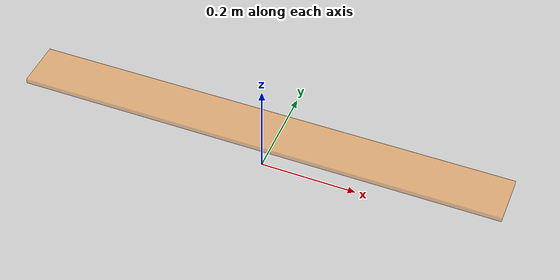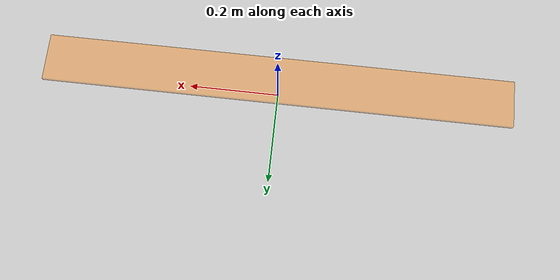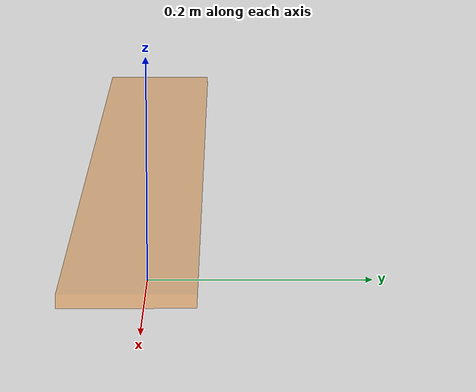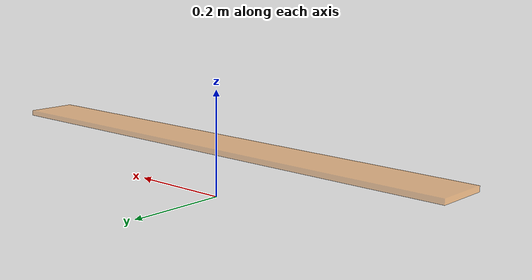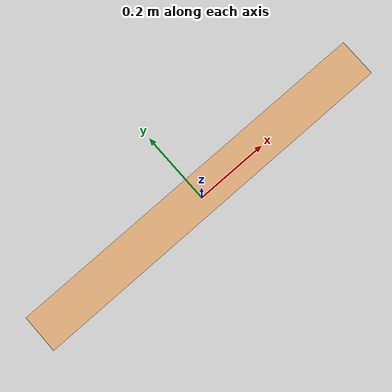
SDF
<?xml version="1.0" ?>
<sdf version="1.8">
  <model name="line_boundary_visible">

    <static>true</static>

    <link name="white_line_boundary">
      <collision name="line_collision">
        <pose>0 0 0.1 0 0 0</pose>
        <geometry>
          <box><size>1 0.1 0.01</size></box>
        </geometry>
      </collision>

      <visual name="line_visual">
        <pose>0 0 0.1 0 0 0</pose>
        <geometry>
          <box><size>1 0.1 0.01</size></box>
        </geometry>
        <material>
          <ambient>1.0 0.5 0.0 0.4</ambient>
          <diffuse>1.0 0.5 0.0 0.4</diffuse>
        </material>
      </visual>
    </link>

  </model>
</sdf>
